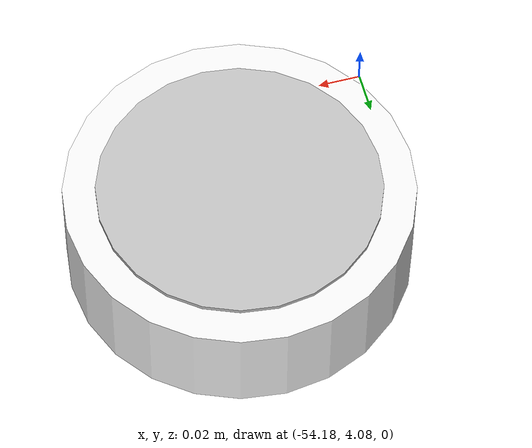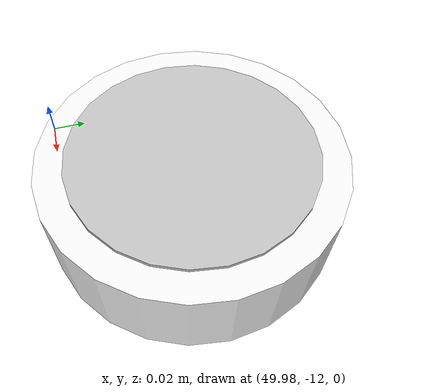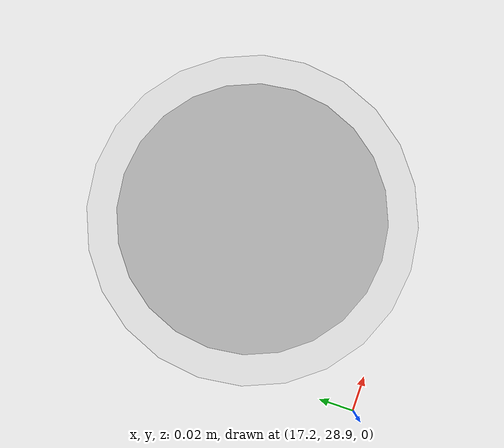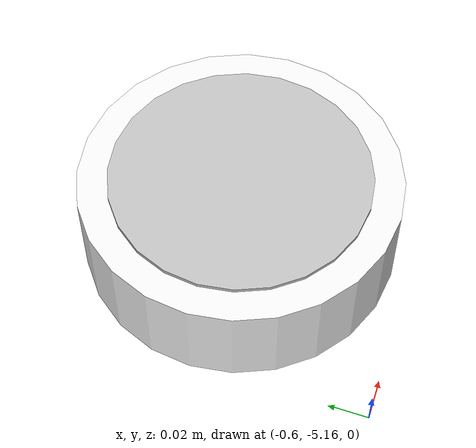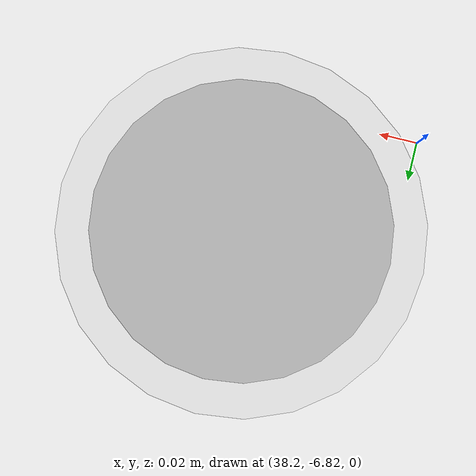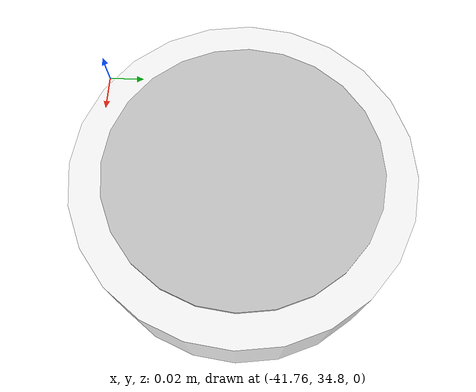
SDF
<?xml version="1.0" encoding="UTF-8"?>
<!-- Author: Frank Loewenich. Generated by tools/make_world.py: regenerate rather than edit, and keep the JSON in step. -->
<sdf version="1.9">
  <world name="bowl_field_sparse">
    <physics type="ode">
      <max_step_size>0.004</max_step_size>
      <real_time_factor>1.0</real_time_factor>
      <real_time_update_rate>250</real_time_update_rate>
    </physics>
    <plugin name="gz::sim::systems::Physics" filename="gz-sim-physics-system"/>
    <plugin name="gz::sim::systems::UserCommands" filename="gz-sim-user-commands-system"/>
    <plugin name="gz::sim::systems::SceneBroadcaster" filename="gz-sim-scene-broadcaster-system"/>
    <plugin name="gz::sim::systems::Contact" filename="gz-sim-contact-system"/>
    <plugin name="gz::sim::systems::Imu" filename="gz-sim-imu-system"/>
    <plugin name="gz::sim::systems::AirPressure" filename="gz-sim-air-pressure-system"/>
    <plugin name="gz::sim::systems::ApplyLinkWrench" filename="gz-sim-apply-link-wrench-system"/>
    <plugin name="gz::sim::systems::NavSat" filename="gz-sim-navsat-system"/>
    <plugin name="gz::sim::systems::Sensors" filename="gz-sim-sensors-system">
      <render_engine>ogre2</render_engine>
    </plugin>

    <gui fullscreen="false">
      <plugin filename="MinimalScene" name="3D View">
        <gz-gui><title>3D View</title><property type="bool" key="showTitleBar">false</property><property type="string" key="state">docked</property></gz-gui>
        <engine>ogre2</engine><scene>scene</scene>
        <ambient_light>0.4 0.4 0.4</ambient_light><background_color>0.8 0.8 0.8</background_color>
        <camera_pose>-20 0 12 0 0.5 0</camera_pose>
        <camera_clip><near>0.25</near><far>25000</far></camera_clip>
      </plugin>
      <plugin filename="GzSceneManager" name="Scene Manager"><gz-gui><property key="state" type="string">floating</property><property key="showTitleBar" type="bool">false</property></gz-gui></plugin>
      <plugin filename="InteractiveViewControl" name="Interactive view control"><gz-gui><property key="state" type="string">floating</property><property key="showTitleBar" type="bool">false</property></gz-gui></plugin>
      <plugin filename="CameraTracking" name="Camera Tracking"><gz-gui><property key="state" type="string">floating</property><property key="showTitleBar" type="bool">false</property></gz-gui></plugin>
      <plugin filename="WorldControl" name="World control">
        <gz-gui><title>World control</title><property type="bool" key="showTitleBar">false</property><property type="bool" key="resizable">false</property><property type="double" key="height">72</property><property type="double" key="width">121</property><property type="double" key="z">1</property><property type="string" key="state">floating</property>
          <anchors target="3D View"><line own="left" target="left"/><line own="bottom" target="bottom"/></anchors></gz-gui>
        <play_pause>true</play_pause><step>true</step><start_paused>true</start_paused>
      </plugin>
      <plugin filename="WorldStats" name="World stats">
        <gz-gui><title>World stats</title><property type="bool" key="showTitleBar">false</property><property type="bool" key="resizable">false</property><property type="double" key="height">110</property><property type="double" key="width">290</property><property type="double" key="z">1</property><property type="string" key="state">floating</property>
          <anchors target="3D View"><line own="right" target="right"/><line own="bottom" target="bottom"/></anchors></gz-gui>
        <sim_time>true</sim_time><real_time>true</real_time><real_time_factor>true</real_time_factor><iterations>true</iterations>
      </plugin>
      <plugin filename="ImageDisplay" name="Survey camera"><gz-gui><property key="state" type="string">docked</property></gz-gui><topic>/uav/camera</topic></plugin>
    </gui>

    <gravity>0 0 -9.8</gravity>
    <magnetic_field>6e-06 2.3e-05 -4.2e-05</magnetic_field>
    <atmosphere type="adiabatic"/>
    <scene>
      <grid>false</grid>
      <ambient>0.8 0.8 0.8 1</ambient>
      <background>0.7 0.8 1 1</background>
      <shadows>true</shadows>
    </scene>
    <light type="directional" name="sun">
      <cast_shadows>true</cast_shadows>
      <pose>0 0 100 0 0 0</pose>
      <intensity>1.6</intensity>
      <diffuse>1 1 0.95 1</diffuse>
      <specular>0.3 0.3 0.3 1</specular>
      <direction>-0.4 0.3 -0.85</direction>
    </light>
    <include><uri>model://grass_ground</uri></include>
    <include><name>bowl_000</name><uri>model://bowl</uri><pose>-41.682 34.882 0 0 0 0</pose></include>
    <include><name>bowl_001</name><uri>model://bowl</uri><pose>30.07 -24.591 0 0 0 0</pose></include>
    <include><name>bowl_002</name><uri>model://bowl</uri><pose>-0.52 -5.071 0 0 0 0</pose></include>
    <include><name>bowl_003</name><uri>model://bowl</uri><pose>17.282 28.988 0 0 0 0</pose></include>
    <include><name>bowl_004</name><uri>model://bowl</uri><pose>-46.3 -47.354 0 0 0 0</pose></include>
    <include><name>bowl_005</name><uri>model://bowl</uri><pose>38.277 -6.75 0 0 0 0</pose></include>
    <include><name>bowl_006</name><uri>model://bowl</uri><pose>29.9 -49.989 0 0 0 0</pose></include>
    <include><name>bowl_007</name><uri>model://bowl</uri><pose>-6.226 22.243 0 0 0 0</pose></include>
    <include><name>bowl_008</name><uri>model://bowl</uri><pose>-30.921 44.705 0 0 0 0</pose></include>
    <include><name>bowl_009</name><uri>model://bowl</uri><pose>45.763 -47.129 0 0 0 0</pose></include>
    <include><name>bowl_010</name><uri>model://bowl</uri><pose>-54.099 4.158 0 0 0 0</pose></include>
    <include><name>bowl_011</name><uri>model://bowl</uri><pose>50.063 -11.927 0 0 0 0</pose></include>
    <spherical_coordinates>
      <surface_model>EARTH_WGS84</surface_model>
      <world_frame_orientation>ENU</world_frame_orientation>
      <latitude_deg>47.397971057728974</latitude_deg>
      <longitude_deg>8.546163739800146</longitude_deg>
      <elevation>0.0</elevation>
    </spherical_coordinates>
  </world>
</sdf>

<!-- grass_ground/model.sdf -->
<!-- Author: Frank Loewenich -->
<sdf version="1.9">
  <model name="grass_ground">
    <static>true</static>
    <link name="link">
      <collision name="collision">
        <geometry><plane><normal>0 0 1</normal><size>400 400</size></plane></geometry>
        <surface><friction><ode><mu>100</mu><mu2>50</mu2></ode></friction></surface>
      </collision>
      <visual name="grass">
        <cast_shadows>false</cast_shadows>
        <geometry><mesh><uri>model://grass_ground/ground_400m.obj</uri></mesh></geometry>
        <material>
          <diffuse>1 1 1 1</diffuse>
          <specular>0.05 0.05 0.05 1</specular>
          <pbr><metal><albedo_map>model://grass_ground/grass.png</albedo_map><roughness>0.95</roughness></metal></pbr>
        </material>
      </visual>
    </link>
  </model>
</sdf>

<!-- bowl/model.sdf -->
<!-- Author: Frank Loewenich -->
<sdf version="1.9">
  <!-- White plastic bowl, 16 cm diameter, 5 cm tall, with a slightly darker inner disc so the rim reads at 11 m. -->
  <model name="bowl">
    <static>true</static>
    <link name="link">
      <visual name="body">
        <pose>0 0 0.025 0 0 0</pose>
        <geometry><cylinder><radius>0.08</radius><length>0.05</length></cylinder></geometry>
        <material>
          <ambient>0.85 0.85 0.85 1</ambient>
          <diffuse>0.95 0.95 0.95 1</diffuse>
          <specular>0.4 0.4 0.4 1</specular>
        </material>
      </visual>
      <visual name="inner">
        <pose>0 0 0.051 0 0 0</pose>
        <geometry><cylinder><radius>0.065</radius><length>0.002</length></cylinder></geometry>
        <material>
          <ambient>0.6 0.6 0.6 1</ambient>
          <diffuse>0.75 0.75 0.75 1</diffuse>
        </material>
      </visual>
      <collision name="collision">
        <pose>0 0 0.025 0 0 0</pose>
        <geometry><cylinder><radius>0.08</radius><length>0.05</length></cylinder></geometry>
      </collision>
    </link>
  </model>
</sdf>
